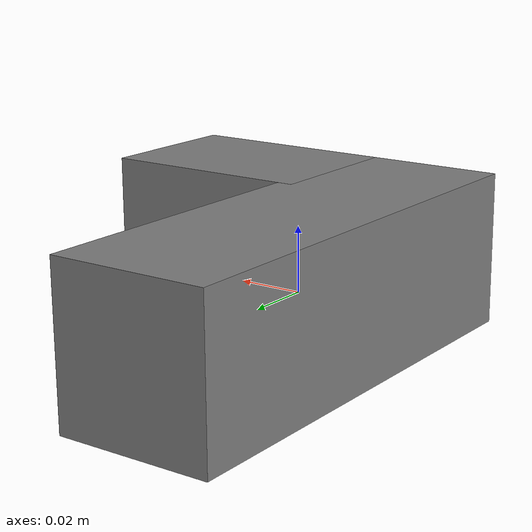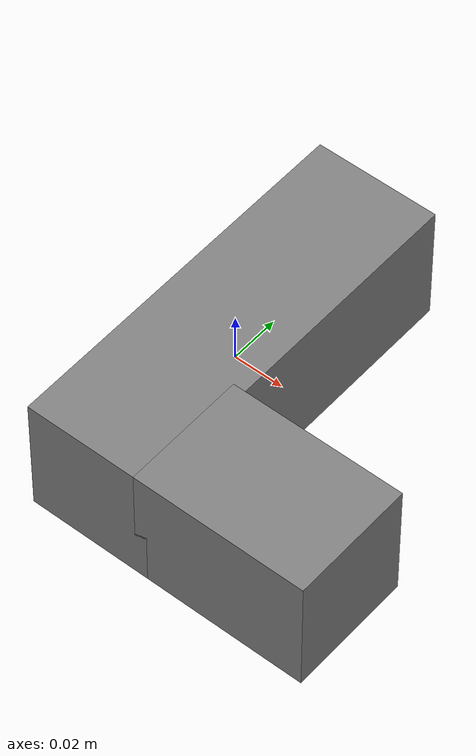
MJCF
<mujoco model="shape_l">
  <worldbody>
    <body name="shape">
      <geom name="vertical" type="box" size="0.025 0.075 0.025" pos="0.0 0.0 0.0" mass="0.1364"/>
      <geom name="horizontal" type="box" size="0.035 0.025 0.025" pos="0.055 -0.05 0.0" mass="0.0436"/>
      <site name="attractor_site1" pos="0.0 0.05 0.0" size="0.005" />
      <site name="attractor_site2" pos="0.06 -0.05 0.0" size="0.005" />
      <site name="attractor_site3" pos="0.0 -0.05 0.0" size="0.005" />
    </body>
  </worldbody>
</mujoco>
